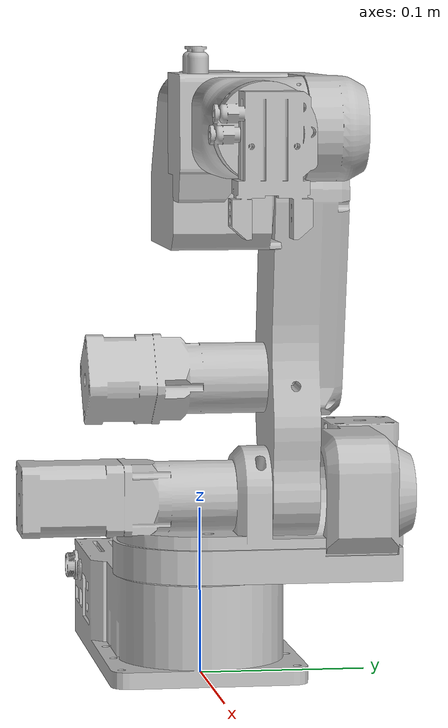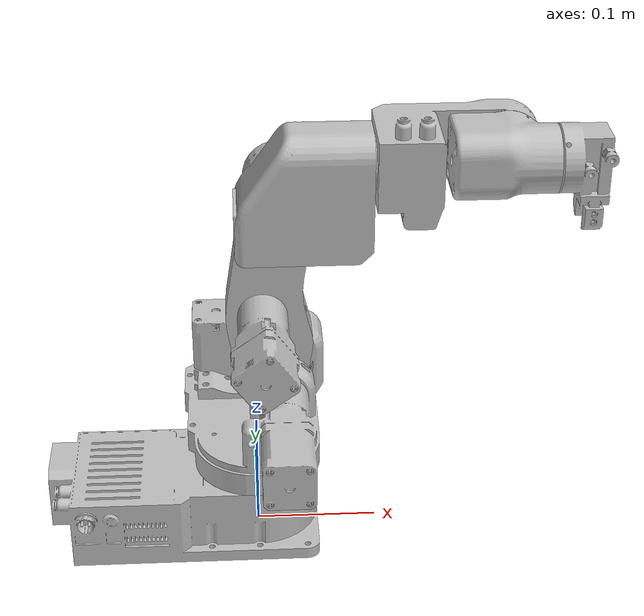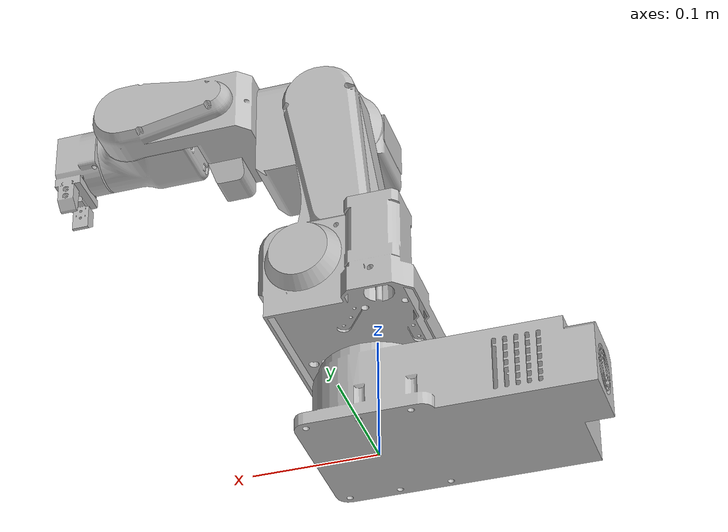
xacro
<?xml version="1.0" ?>

<robot name="parol6" xmlns:xacro="http://wiki.ros.org/xacro">

    <xacro:arg name="is_sim" default="true"/>

    <xacro:include filename="$(find parol6_description)/urdf/parol6.gazebo.xacro" />
    <xacro:include filename="$(find parol6_description)/urdf/parol6.ros2_control.xacro" />
    <xacro:property name="PI" value="3.14159265359" />
    <xacro:property name="DEG_TO_RAD" value="0.017453292519943295" />

    <link name="world"/>
    <link name="base_link">
        <inertial>
        <origin
            xyz="-0.0274562034602567 -0.00137265400595656 0.031237920982338"
            rpy="0 0 0" />
        <mass
            value="0.812661291810144" />
        <inertia
            ixx="0.00110740279540382"
            ixy="4.67463481205112E-05"
            ixz="8.47873933528831E-06"
            iyy="0.00106582362830227"
            iyz="-2.6194130573118E-06"
            izz="0.00147883396699374" />
        </inertial>
        <visual>
            <origin
                xyz="0 0 0"
                rpy="0 0 0" />
            <geometry>
                <mesh
                filename="package://parol6_description/meshes/base_link.STL" />
            </geometry>
            <material
                name="">
                <color
                rgba="0.752941176470588 0.752941176470588 0.752941176470588 1" />
            </material>
        </visual>
        <collision>
            <origin
                xyz="0 0 0"
                rpy="0 0 0" />
            <geometry>
                <mesh
                filename="package://parol6_description/meshes/base_link.STL" />
            </geometry>
        </collision>
    </link>
    <link
        name="L1">
        <inertial>
        <origin
            xyz="0.00524529891406311 0.0289722820784871 0.0992791429452917"
            rpy="0 0 0" />
        <mass
            value="0.644800830530233" />
        <inertia
            ixx="0.00109429409029172"
            ixy="-6.27156874097953E-05"
            ixz="-5.70466862844753E-05"
            iyy="0.00056996197700816"
            iyz="-0.000121686402940313"
            izz="0.00129487722474286" />
        </inertial>
        <visual>
            <origin
                xyz="0 0 0"
                rpy="0 0 0" />
            <geometry>
                <mesh
                filename="package://parol6_description/meshes/L1.STL" />
            </geometry>
            <material
                name="">
                <color
                rgba="0.752941176470588 0.752941176470588 0.752941176470588 1" />
            </material>
        </visual>
        <collision>
            <origin
                xyz="0 0 0"
                rpy="0 0 0" />
            <geometry>
                <mesh
                filename="package://parol6_description/meshes/L1.STL" />
            </geometry>
        </collision>
    </link>

    <link
        name="L2">
        <inertial>
        <origin
            xyz="-0.0094181617193695 -0.0783879603613605 0.0369429741417731"
            rpy="0 0 0" />
        <mass
            value="0.512334779399788" />
        <inertia
            ixx="0.00123357482646866"
            ixy="3.63236238096924E-06"
            ixz="-3.30834557934783E-07"
            iyy="0.000205462733796053"
            iyz="4.86441772103282E-07"
            izz="0.00132225033266162" />
        </inertial>
        <visual>
            <origin
                xyz="0 0 0"
                rpy="0 0 0" />
            <geometry>
                <mesh
                filename="package://parol6_description/meshes/L2.STL" />
            </geometry>
            <material
                name="">
                <color
                rgba="0.752941176470588 0.752941176470588 0.752941176470588 1" />
            </material>
        </visual>
        <collision>
            <origin
                xyz="0 0 0"
                rpy="0 0 0" />
            <geometry>
                <mesh
                filename="package://parol6_description/meshes/L2.STL" />
            </geometry>
        </collision>
    </link>

    <link
        name="L3">
        <inertial>
        <origin
            xyz="0.0155509885239593 -0.0191127686426613 -0.00153322577917236"
            rpy="0 0 0" />
        <mass
            value="0.550970997806044" />
        <inertia
            ixx="0.00057827573271994"
            ixy="0.000116505232322314"
            ixz="-1.19955293256513E-05"
            iyy="0.000567011676944701"
            iyz="1.55814255036021E-05"
            izz="0.000815862001506843" />
        </inertial>
        <visual>
            <origin
                xyz="0 0 0"
                rpy="0 0 0" />
            <geometry>
                <mesh
                filename="package://parol6_description/meshes/L3.STL" />
            </geometry>
            <material
                name="">
                <color
                rgba="0.752941176470588 0.752941176470588 0.752941176470588 1" />
            </material>
        </visual>
        <collision>
            <origin
                xyz="0 0 0"
                rpy="0 0 0" />
            <geometry>
                <mesh
                filename="package://parol6_description/meshes/L3.STL" />
            </geometry>
        </collision>
    </link>

    <link
        name="L4">
        <inertial>
        <origin
            xyz="0.000947028430634433 -0.008978947112462 -0.0924798659827059"
            rpy="0 0 0" />
        <mass
            value="0.39346362633915" />
        <inertia
            ixx="0.000371672516830215"
            ixy="-1.05560000666389E-05"
            ixz="-1.56899445418326E-07"
            iyy="0.000332364226344361"
            iyz="-6.10397110934672E-05"
            izz="0.000250606789571909" />
        </inertial>
        <visual>
            <origin
                xyz="0 0 0"
                rpy="0 0 0" />
            <geometry>
                <mesh
                filename="package://parol6_description/meshes/L4.STL" />
            </geometry>
            <material
                name="">
                <color
                rgba="0.752941176470588 0.752941176470588 0.752941176470588 1" />
            </material>
        </visual>
        <collision>
            <origin
                xyz="0 0 0"
                rpy="0 0 0" />
            <geometry>
                <mesh
                filename="package://parol6_description/meshes/L4.STL" />
            </geometry>
        </collision>
    </link>

    <link
        name="L5">
        <inertial>
        <origin
            xyz="6.7162171684676E-06 -0.00621420980825221 -0.000960871025916146"
            rpy="0 0 0" />
        <mass
            value="0.185171777001718" />
        <inertia
            ixx="0.000109176748460021"
            ixy="-1.27195013439061E-07"
            ixz="8.4436049148633E-08"
            iyy="8.41307588934268E-05"
            iyz="-4.41596193640049E-07"
            izz="0.000110629136236229" />
        </inertial>
        <visual>
            <origin
                xyz="0 0 0"
                rpy="0 0 0" />
            <geometry>
                <mesh
                filename="package://parol6_description/meshes/L5.STL" />
            </geometry>
            <material
                name="">
                <color
                rgba="0.752941176470588 0.752941176470588 0.752941176470588 1" />
            </material>
        </visual>
        <collision>
            <origin
                xyz="0 0 0"
                rpy="0 0 0" />
            <geometry>
                <mesh
                filename="package://parol6_description/meshes/L5.STL" />
            </geometry>
        </collision>
    </link>

    <link
        name="L6">
        <inertial>
        <origin
            xyz="0.00632955087228015 -0.000453856352095022 -0.0554441567386594"
            rpy="0 0 0" />
        <mass
            value="0.0703261410665101" />
        <inertia
            ixx="1.40276237518287E-05"
            ixy="3.15503246005279E-07"
            ixz="-9.28469598788221E-07"
            iyy="1.81406721166117E-05"
            iyz="-9.43630009030796E-07"
            izz="2.34608103291027E-05" />
        </inertial>
        <visual>
            <origin
                xyz="0 0 0"
                rpy="0 0 0" />
            <geometry>
                <mesh
                filename="package://parol6_description/meshes/L6.STL" />
            </geometry>
            <material
                name="">
                <color
                rgba="0.752941176470588 0.752941176470588 0.752941176470588 1" />
            </material>
        </visual>
        <collision>
            <origin
                xyz="0 0 0"
                rpy="0 0 0" />
            <geometry>
                <mesh
                filename="package://parol6_description/meshes/L6.STL" />
            </geometry>
        </collision>
    </link>

    <joint name="virtual_joint" type="fixed">
        <parent link="world"/>
        <child link="base_link"/>
        <origin xyz="0 0 0" rpy="0 0 0"/>
    </joint>

    <joint
        name="J1"
        type="revolute">
        <origin
        xyz="0 0 0"
        rpy="0 0 0" />
        <parent
        link="base_link" />
        <child
        link="L1" />
        <axis
        xyz="0 0 -1" />
        <limit
        lower="-1.083"
        upper="2.148"
        effort="3.84"
        velocity="4.6" />
    </joint>

    <joint
        name="J2"
        type="revolute">
        <origin
        xyz="0.0234207210610375 0 0.1105"
        rpy="-1.5707963267949 0 0" />
        <parent
        link="L1" />
        <child
        link="L2" />
        <axis
        xyz="0 0 -1" />
        <limit
        lower="-1.221"
        upper="0.907"
        effort="18.31"
        velocity="1.75" />
    </joint>

    <joint
        name="J3"
        type="revolute">
        <origin
        xyz="0 -0.18 0"
        rpy="3.1416 0 -1.5708" />
        <parent
        link="L2" />
        <child
        link="L3" />
        <axis
        xyz="0 0 -1" />
        <limit
        lower="-1.8825"
        upper="1.2566"
        effort="9.229"
        velocity="1.75" />
    </joint>

    <joint
        name="J4"
        type="revolute">
        <origin
        xyz="0.0435 0 0"
        rpy="1.5707963267949 0 3.14159265358979" />
        <parent
        link="L3" />
        <child
        link="L4" />
        <axis
        xyz="0 0 -1" />
        <limit
        lower="-1.841"
        upper="1.841"
        effort="1.12"
        velocity="4.9" />
    </joint>

    <joint
        name="J5"
        type="revolute">
        <origin
        xyz="0 0 -0.17635"
        rpy="-1.5708 0 0" />
        <parent
        link="L4" />
        <child
        link="L5" />
        <axis
        xyz="0 0 -1" />
        <limit
        lower="-1.571"
        upper="1.571"
        effort="0.85"
        velocity="4.9" />
    </joint>

    <joint
        name="J6"
        type="revolute">
        <origin
        xyz="0 0 0"
        rpy="1.5708 0 0" />
        <parent
        link="L5" />
        <child
        link="L6" />
        <axis
        xyz="0 0 -1" />
        <limit
        lower="-3.1"
        upper="3.1"
        effort="1.4"
        velocity="4.35" />
    </joint>
</robot>
